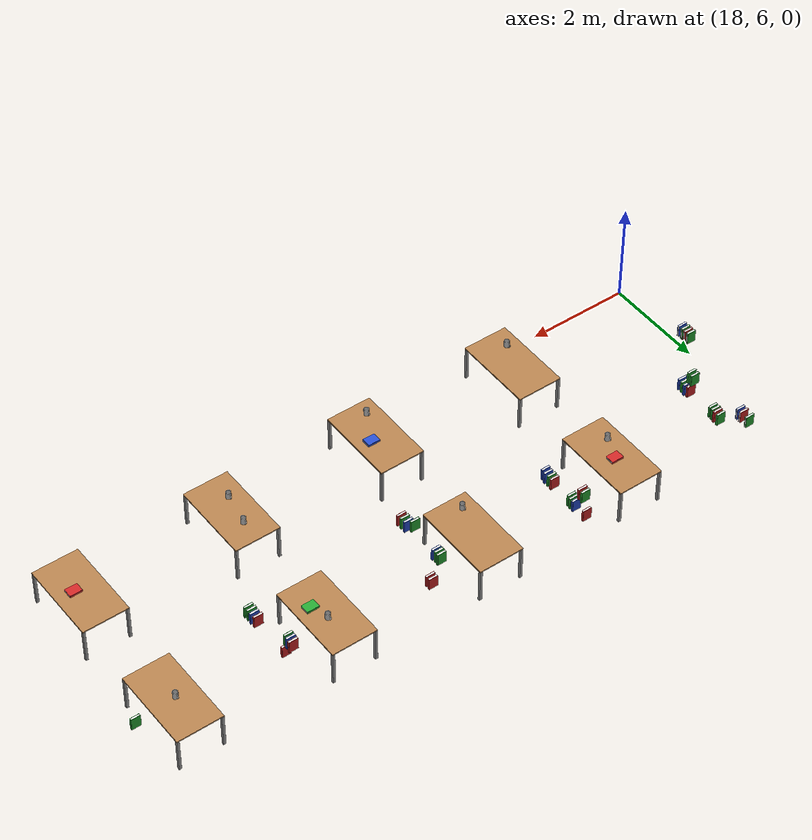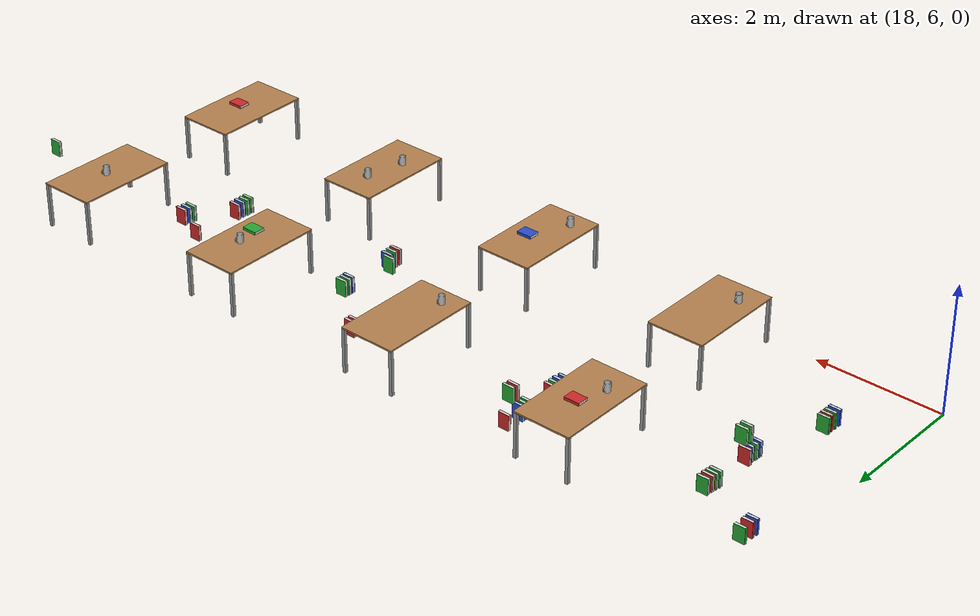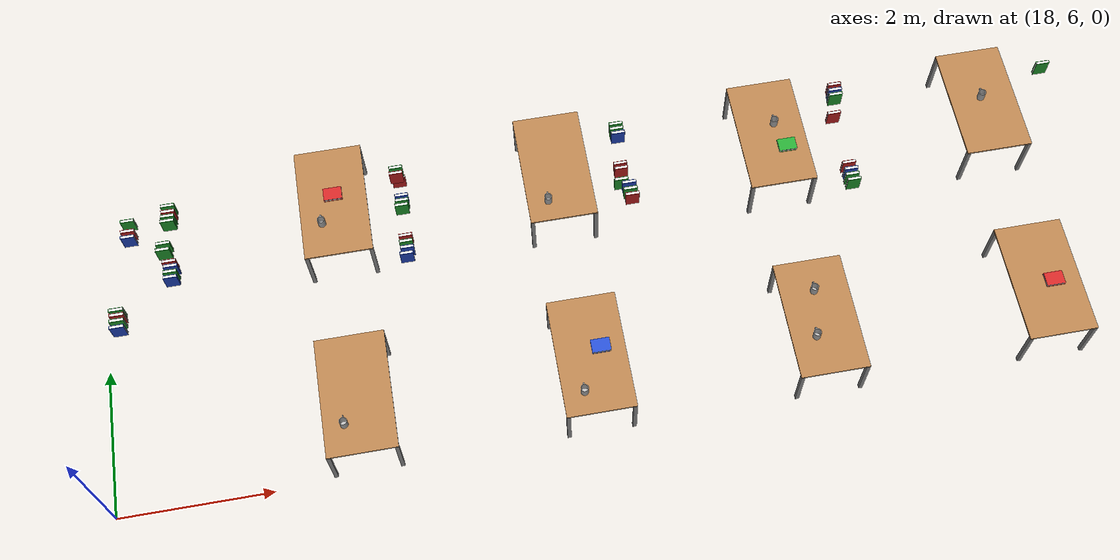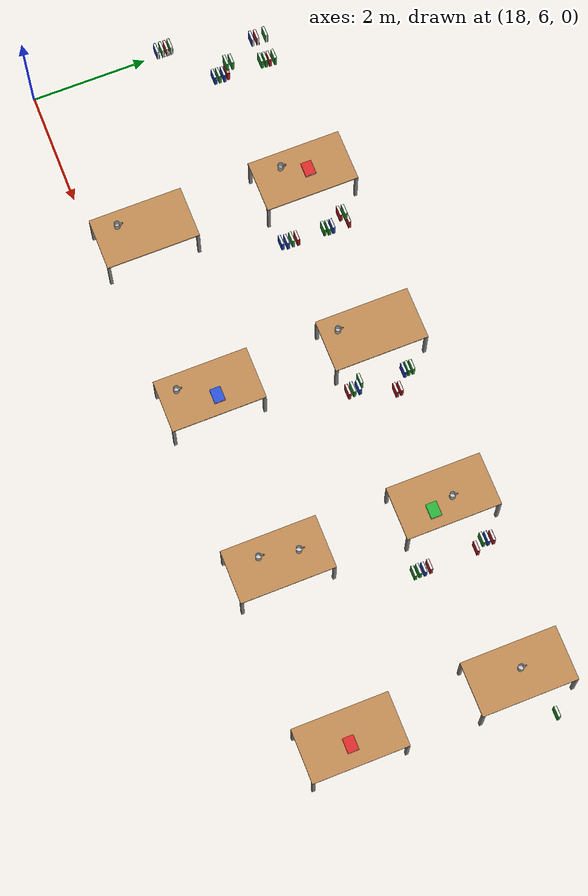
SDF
<sdf version="1.4">
 <world name="default">
  <include><uri>model://sun</uri></include>
  <model name="largeTable_r1408B_atwindow">
   <pose>21.2 9.64 0 0 0 0</pose>
   <include><uri>model://largeTable</uri></include>
  </model>
  <model name="largeTable_r1408B_atdoor">
   <pose>21.2 6.85 0 0 0 0</pose>
   <include><uri>model://largeTable</uri></include>
  </model>
  <model name="largeTable_r1408C_atwindow">
   <pose>24.2 9.64 0 0 0 0</pose>
   <include><uri>model://largeTable</uri></include>
  </model>
  <model name="largeTable_r1408C_atdoor">
   <pose>24.2 6.85 0 0 0 0</pose>
   <include><uri>model://largeTable</uri></include>
  </model>
  <model name="largeTable_r1406A_atwindow">
   <pose>27.2 9.64 0 0 0 0</pose>
   <include><uri>model://largeTable</uri></include>
  </model>
  <model name="largeTable_r1406A_atdoor">
   <pose>27.2 6.85 0 0 0 0</pose>
   <include><uri>model://largeTable</uri></include>
  </model>
  <model name="largeTable_r1406B_atwindow">
   <pose>30.2 9.64 0 0 0 0</pose>
   <include><uri>model://largeTable</uri></include>
  </model>
  <model name="largeTable_r1406B_atdoor">
   <pose>30.2 6.85 0 0 0 0</pose>
   <include><uri>model://largeTable</uri></include>
  </model>
  <model name="cup_9"><pose>21.02 6.49 0.78 0 0 0</pose><include><uri>model://cup</uri></include></model>
  <model name="cup_10"><pose>21.03 9.35 0.78 0 0 0</pose><include><uri>model://cup</uri></include></model>
  <model name="cup_11"><pose>24.03 6.39 0.78 0 0 0</pose><include><uri>model://cup</uri></include></model>
  <model name="cup_12"><pose>24.03 9.16 0.78 0 0 0</pose><include><uri>model://cup</uri></include></model>
  <model name="cup_13"><pose>27.07 6.61 0.78 0 0 0</pose><include><uri>model://cup</uri></include></model>
  <model name="cup_14"><pose>27.19 7.24 0.78 0 0 0</pose><include><uri>model://cup</uri></include></model>
  <model name="cup_15"><pose>27.26 9.80 0.78 0 0 0</pose><include><uri>model://cup</uri></include></model>
  <model name="cup_16"><pose>30.17 9.71 0.78 0 0 0</pose><include><uri>model://cup</uri></include></model>
  <model name="redBook_3">
   <pose>21.21 9.73 0.74 1.570796327 0 -1.570796327</pose>
   <include><uri>model://redBook</uri></include>
  </model>
  <model name="blueBook_4">
   <pose>24.34 6.93 0.74 1.570796327 0 -1.570796327</pose>
   <include><uri>model://blueBook</uri></include>
  </model>
  <model name="greenBook_3">
   <pose>27.36 9.40 0.74 1.570796327 0 -1.570796327</pose>
   <include><uri>model://greenBook</uri></include>
  </model>
  <model name="redBook_4">
   <pose>30.30 6.81 0.74 1.570796327 0 -1.570796327</pose>
   <include><uri>model://redBook</uri></include>
  </model>
  <model name="greenBook_42">
   <pose>31.0343 9.86992 0.942357 0 0 -3.1407</pose>
   <include><uri>model://greenBook</uri></include>
  </model>
  <model name="greenBook_46">
   <pose>28.1421 8.74783 0.579734 0 0 -3.1407</pose>
   <include><uri>model://greenBook</uri></include>
  </model>
  <model name="greenBook_47">
   <pose>28.1373 8.82966 0.579734 0 0 -3.1407</pose>
   <include><uri>model://greenBook</uri></include>
  </model>
  <model name="blueBook_29">
   <pose>28.1427 8.91533 0.579734 0 0 -3.1407</pose>
   <include><uri>model://blueBook</uri></include>
  </model>
  <model name="redBook_28">
   <pose>28.1363 9.01309 0.579734 0 0 -3.1407</pose>
   <include><uri>model://redBook</uri></include>
  </model>
  <model name="redBook_29">
   <pose>28.13 9.81 0.579734 0 0 -3.1407</pose>
   <include><uri>model://redBook</uri></include>
  </model>
  <model name="greenBook_48">
   <pose>28.1177 9.88194 0.940595 0 0 -3.1407</pose>
   <include><uri>model://greenBook</uri></include>
  </model>
  <model name="blueBook_30">
   <pose>28.1272 9.95724 0.940595 0 0 -3.1407</pose>
   <include><uri>model://blueBook</uri></include>
  </model>
  <model name="redBook_30">
   <pose>28.1386 10.0407 0.940595 0 0 -3.1407</pose>
   <include><uri>model://redBook</uri></include>
  </model>
  <model name="redBook_31">
   <pose>25.1109 8.85552 0.940595 0 0 -3.1407</pose>
   <include><uri>model://redBook</uri></include>
  </model>
  <model name="greenBook_49">
   <pose>25.1021 8.94226 0.940595 0 0 -3.1407</pose>
   <include><uri>model://greenBook</uri></include>
  </model>
  <model name="blueBook_31">
   <pose>25.1022 9.03745 0.940595 0 0 -3.1407</pose>
   <include><uri>model://blueBook</uri></include>
  </model>
  <model name="blueBook_32">
   <pose>25.097 9.81117 0.940595 0 0 -3.1407</pose>
   <include><uri>model://blueBook</uri></include>
  </model>
  <model name="greenBook_50">
   <pose>25.0899 9.88 0.940595 0 0 -3.1407</pose>
   <include><uri>model://greenBook</uri></include>
  </model>
  <model name="greenBook_51">
   <pose>25.0919 9.95328 0.940595 0 0 -3.1407</pose>
   <include><uri>model://greenBook</uri></include>
  </model>
  <model name="greenBook_52">
   <pose>25.01 9.10 0.940595 0 0 -3.1407</pose>
   <include><uri>model://greenBook</uri></include>
  </model>
  <model name="redBook_32">
   <pose>25.1316 9.6973 0.187441 0 0 -3.1407</pose>
   <include><uri>model://redBook</uri></include>
  </model>
  <model name="redBook_33">
   <pose>25.1317 9.77531 0.187441 0 0 -3.1407</pose>
   <include><uri>model://redBook</uri></include>
  </model>
  <model name="greenBook_53">
   <pose>22.0719 9.65893 0.187441 0 0 -3.1407</pose>
   <include><uri>model://greenBook</uri></include>
  </model>
  <model name="greenBook_54">
   <pose>22.0849 9.7327 0.187441 0 0 -3.1407</pose>
   <include><uri>model://greenBook</uri></include>
  </model>
  <model name="blueBook_33">
   <pose>22.0876 9.80839 0.187441 0 0 -3.1407</pose>
   <include><uri>model://blueBook</uri></include>
  </model>
  <model name="blueBook_34">
   <pose>22.0504 8.91541 0.187441 0 0 -3.1407</pose>
   <include><uri>model://blueBook</uri></include>
  </model>
  <model name="blueBook_35">
   <pose>22.0696 9.00589 0.187441 0 0 -3.1407</pose>
   <include><uri>model://blueBook</uri></include>
  </model>
  <model name="greenBook_55">
   <pose>22.0647 9.09781 0.187441 0 0 -3.1407</pose>
   <include><uri>model://greenBook</uri></include>
  </model>
  <model name="redBook_34">
   <pose>22.0702 9.18568 0.187441 0 0 -3.1407</pose>
   <include><uri>model://redBook</uri></include>
  </model>
  <model name="redBook_35">
   <pose>22.0858 10.0918 0.187441 0 0 -3.1407</pose>
   <include><uri>model://redBook</uri></include>
  </model>
  <model name="greenBook_56">
   <pose>22.0797 10.0191 0.582228 0 0 -3.1407</pose>
   <include><uri>model://greenBook</uri></include>
  </model>
  <model name="redBook_36">
   <pose>22.0742 9.93323 0.582228 0 0 -3.1407</pose>
   <include><uri>model://redBook</uri></include>
  </model>
  <model name="greenBook_57">
   <pose>18.9972 9.74654 0.582228 0 0 -3.1407</pose>
   <include><uri>model://greenBook</uri></include>
  </model>
  <model name="greenBook_58">
   <pose>19.004 9.81803 0.582228 0 0 -3.1407</pose>
   <include><uri>model://greenBook</uri></include>
  </model>
  <model name="redBook_37">
   <pose>19.0145 9.88641 0.582228 0 0 -3.1407</pose>
   <include><uri>model://redBook</uri></include>
  </model>
  <model name="greenBook_59">
   <pose>19.0169 9.97467 0.582228 0 0 -3.1407</pose>
   <include><uri>model://greenBook</uri></include>
  </model>
  <model name="blueBook_36">
   <pose>18.9921 8.90746 0.582228 0 0 -3.1407</pose>
   <include><uri>model://blueBook</uri></include>
  </model>
  <model name="greenBook_60">
   <pose>18.995 8.98608 0.582228 0 0 -3.1407</pose>
   <include><uri>model://greenBook</uri></include>
  </model>
  <model name="blueBook_37">
   <pose>19.005 9.06809 0.582228 0 0 -3.1407</pose>
   <include><uri>model://blueBook</uri></include>
  </model>
  <model name="redBook_38">
   <pose>18.99 9.14 0.582228 0 0 -3.1407</pose>
   <include><uri>model://redBook</uri></include>
  </model>
  <model name="greenBook_61">
   <pose>19.0039 9.22098 0.929116 0 0 -3.1407</pose>
   <include><uri>model://greenBook</uri></include>
  </model>
  <model name="greenBook_62">
   <pose>18.9944 9.13073 0.929116 0 0 -3.1407</pose>
   <include><uri>model://greenBook</uri></include>
  </model>
  <model name="greenBook_68">
   <pose>18.3744 8.36995 0.935975 0 -0 0</pose>
   <include><uri>model://greenBook</uri></include>
  </model>
  <model name="redBook_42">
   <pose>18.3805 8.29779 0.935975 0 -0 0</pose>
   <include><uri>model://redBook</uri></include>
  </model>
  <model name="greenBook_69">
   <pose>18.3761 8.22101 0.935975 0 -0 0</pose>
   <include><uri>model://greenBook</uri></include>
  </model>
  <model name="blueBook_42">
   <pose>18.3751 8.13017 0.935975 0 -0 0</pose>
   <include><uri>model://blueBook</uri></include>
  </model>
  <model name="greenBook_77">
   <pose>18.3839 10.0571 0.204601 0 -0 0</pose>
   <include><uri>model://greenBook</uri></include>
  </model>
  <model name="redBook_46">
   <pose>18.382 9.90051 0.204601 0 -0 0</pose>
   <include><uri>model://redBook</uri></include>
  </model>
  <model name="blueBook_45">
   <pose>18.3776 9.81211 0.204601 0 -0 0</pose>
   <include><uri>model://blueBook</uri></include>
  </model>
 </world>
</sdf>
